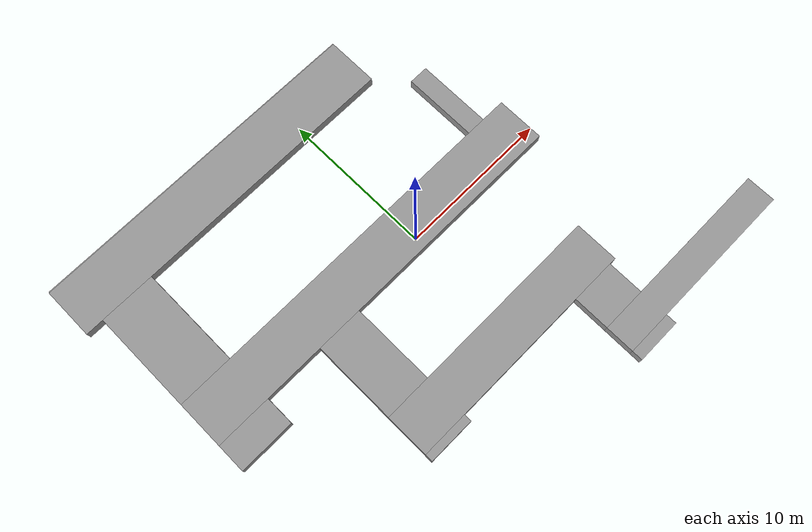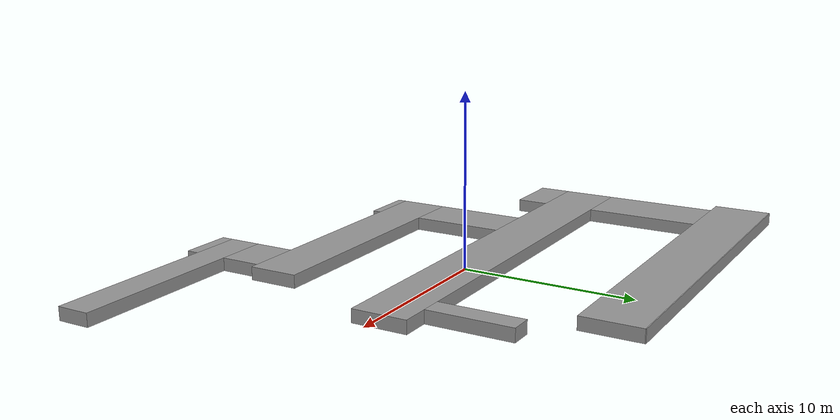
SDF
<sdf version="1.5">
 <world name="default">
  <include><uri>model://new_model</uri><pose>-20.000000 -15.000000 0 0 0 0</pose></include>
  <include><uri>model://sun</uri></include>
 </world>
</sdf>

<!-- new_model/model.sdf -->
<sdf version="1.6">
    <model name="new_model">
        <pose frame="">0 0 0 0 0 0</pose>
        <link name="wall1">
            <collision name="wall1_collision">
                <geometry>
                    <box>
                        <size>2.956250 0.706250 0.750000</size>
                    </box>
                </geometry>
                <pose frame="">25.200000 1.225000 0.375000 0 0 0</pose>
            </collision>
            <visual name="Wall_1_Visual">
                <pose frame="">25.200000 1.225000 0.375000 0 0 0</pose>
                <geometry>
                    <box>
                        <size>2.956250 0.706250 0.750000</size>
                    </box>
                </geometry>
                <material>
                    <script>
                        <uri>file://media/materials/scripts/gazebo.material</uri>
                        <name>Gazebo/Grey</name>
                    </script>
                    <ambient>1 1 1 1</ambient>
                </material>
                <meta>
                    <layer>0</layer>
                </meta>
            </visual>
            <pose frame="">0 0 0 0 0 0</pose>
        </link>
        <static>1</static>
        <link name="wall2">
            <collision name="wall2_collision">
                <geometry>
                    <box>
                        <size>12.706250 1.906250 0.750000</size>
                    </box>
                </geometry>
                <pose frame="">30.075000 2.525000 0.375000 0 0 0</pose>
            </collision>
            <visual name="Wall_2_Visual">
                <pose frame="">30.075000 2.525000 0.375000 0 0 0</pose>
                <geometry>
                    <box>
                        <size>12.706250 1.906250 0.750000</size>
                    </box>
                </geometry>
                <material>
                    <script>
                        <uri>file://media/materials/scripts/gazebo.material</uri>
                        <name>Gazebo/Grey</name>
                    </script>
                    <ambient>1 1 1 1</ambient>
                </material>
                <meta>
                    <layer>0</layer>
                </meta>
            </visual>
            <pose frame="">0 0 0 0 0 0</pose>
        </link>
        <static>1</static>
        <link name="wall3">
            <collision name="wall3_collision">
                <geometry>
                    <box>
                        <size>2.956250 2.356250 0.750000</size>
                    </box>
                </geometry>
                <pose frame="">25.200000 4.650000 0.375000 0 0 0</pose>
            </collision>
            <visual name="Wall_3_Visual">
                <pose frame="">25.200000 4.650000 0.375000 0 0 0</pose>
                <geometry>
                    <box>
                        <size>2.956250 2.356250 0.750000</size>
                    </box>
                </geometry>
                <material>
                    <script>
                        <uri>file://media/materials/scripts/gazebo.material</uri>
                        <name>Gazebo/Grey</name>
                    </script>
                    <ambient>1 1 1 1</ambient>
                </material>
                <meta>
                    <layer>0</layer>
                </meta>
            </visual>
            <pose frame="">0 0 0 0 0 0</pose>
        </link>
        <static>1</static>
        <link name="wall4">
            <collision name="wall4_collision">
                <geometry>
                    <box>
                        <size>3.056250 0.506250 0.750000</size>
                    </box>
                </geometry>
                <pose frame="">13.050000 5.575000 0.375000 0 0 0</pose>
            </collision>
            <visual name="Wall_4_Visual">
                <pose frame="">13.050000 5.575000 0.375000 0 0 0</pose>
                <geometry>
                    <box>
                        <size>3.056250 0.506250 0.750000</size>
                    </box>
                </geometry>
                <material>
                    <script>
                        <uri>file://media/materials/scripts/gazebo.material</uri>
                        <name>Gazebo/Grey</name>
                    </script>
                    <ambient>1 1 1 1</ambient>
                </material>
                <meta>
                    <layer>0</layer>
                </meta>
            </visual>
            <pose frame="">0 0 0 0 0 0</pose>
        </link>
        <static>1</static>
        <link name="wall5">
            <collision name="wall5_collision">
                <geometry>
                    <box>
                        <size>15.606250 2.856250 0.750000</size>
                    </box>
                </geometry>
                <pose frame="">19.325000 7.250000 0.375000 0 0 0</pose>
            </collision>
            <visual name="Wall_5_Visual">
                <pose frame="">19.325000 7.250000 0.375000 0 0 0</pose>
                <geometry>
                    <box>
                        <size>15.606250 2.856250 0.750000</size>
                    </box>
                </geometry>
                <material>
                    <script>
                        <uri>file://media/materials/scripts/gazebo.material</uri>
                        <name>Gazebo/Grey</name>
                    </script>
                    <ambient>1 1 1 1</ambient>
                </material>
                <meta>
                    <layer>0</layer>
                </meta>
            </visual>
            <pose frame="">0 0 0 0 0 0</pose>
        </link>
        <static>1</static>
        <link name="wall6">
            <collision name="wall6_collision">
                <geometry>
                    <box>
                        <size>3.056250 5.456250 0.750000</size>
                    </box>
                </geometry>
                <pose frame="">13.050000 11.400000 0.375000 0 0 0</pose>
            </collision>
            <visual name="Wall_6_Visual">
                <pose frame="">13.050000 11.400000 0.375000 0 0 0</pose>
                <geometry>
                    <box>
                        <size>3.056250 5.456250 0.750000</size>
                    </box>
                </geometry>
                <material>
                    <script>
                        <uri>file://media/materials/scripts/gazebo.material</uri>
                        <name>Gazebo/Grey</name>
                    </script>
                    <ambient>1 1 1 1</ambient>
                </material>
                <meta>
                    <layer>0</layer>
                </meta>
            </visual>
            <pose frame="">0 0 0 0 0 0</pose>
        </link>
        <static>1</static>
        <link name="wall7">
            <collision name="wall7_collision">
                <geometry>
                    <box>
                        <size>3.606250 1.906250 0.750000</size>
                    </box>
                </geometry>
                <pose frame="">5.775000 13.175000 0.375000 0 0 0</pose>
            </collision>
            <visual name="Wall_7_Visual">
                <pose frame="">5.775000 13.175000 0.375000 0 0 0</pose>
                <geometry>
                    <box>
                        <size>3.606250 1.906250 0.750000</size>
                    </box>
                </geometry>
                <material>
                    <script>
                        <uri>file://media/materials/scripts/gazebo.material</uri>
                        <name>Gazebo/Grey</name>
                    </script>
                    <ambient>1 1 1 1</ambient>
                </material>
                <meta>
                    <layer>0</layer>
                </meta>
            </visual>
            <pose frame="">0 0 0 0 0 0</pose>
        </link>
        <static>1</static>
        <link name="wall8">
            <collision name="wall8_collision">
                <geometry>
                    <box>
                        <size>25.756250 3.156250 0.750000</size>
                    </box>
                </geometry>
                <pose frame="">16.850000 15.700000 0.375000 0 0 0</pose>
            </collision>
            <visual name="Wall_8_Visual">
                <pose frame="">16.850000 15.700000 0.375000 0 0 0</pose>
                <geometry>
                    <box>
                        <size>25.756250 3.156250 0.750000</size>
                    </box>
                </geometry>
                <material>
                    <script>
                        <uri>file://media/materials/scripts/gazebo.material</uri>
                        <name>Gazebo/Grey</name>
                    </script>
                    <ambient>1 1 1 1</ambient>
                </material>
                <meta>
                    <layer>0</layer>
                </meta>
            </visual>
            <pose frame="">0 0 0 0 0 0</pose>
        </link>
        <static>1</static>
        <link name="wall9">
            <collision name="wall9_collision">
                <geometry>
                    <box>
                        <size>3.606250 6.756250 0.750000</size>
                    </box>
                </geometry>
                <pose frame="">5.775000 20.650000 0.375000 0 0 0</pose>
            </collision>
            <visual name="Wall_9_Visual">
                <pose frame="">5.775000 20.650000 0.375000 0 0 0</pose>
                <geometry>
                    <box>
                        <size>3.606250 6.756250 0.750000</size>
                    </box>
                </geometry>
                <material>
                    <script>
                        <uri>file://media/materials/scripts/gazebo.material</uri>
                        <name>Gazebo/Grey</name>
                    </script>
                    <ambient>1 1 1 1</ambient>
                </material>
                <meta>
                    <layer>0</layer>
                </meta>
            </visual>
            <pose frame="">0 0 0 0 0 0</pose>
        </link>
        <static>1</static>
        <link name="wall10">
            <collision name="wall10_collision">
                <geometry>
                    <box>
                        <size>1.256250 4.906250 0.750000</size>
                    </box>
                </geometry>
                <pose frame="">27.500000 19.725000 0.375000 0 0 0</pose>
            </collision>
            <visual name="Wall_10_Visual">
                <pose frame="">27.500000 19.725000 0.375000 0 0 0</pose>
                <geometry>
                    <box>
                        <size>1.256250 4.906250 0.750000</size>
                    </box>
                </geometry>
                <material>
                    <script>
                        <uri>file://media/materials/scripts/gazebo.material</uri>
                        <name>Gazebo/Grey</name>
                    </script>
                    <ambient>1 1 1 1</ambient>
                </material>
                <meta>
                    <layer>0</layer>
                </meta>
            </visual>
            <pose frame="">0 0 0 0 0 0</pose>
        </link>
        <static>1</static>
        <link name="wall11">
            <collision name="wall11_collision">
                <geometry>
                    <box>
                        <size>22.456250 3.406250 0.750000</size>
                    </box>
                </geometry>
                <pose frame="">14.050000 25.725000 0.375000 0 0 0</pose>
            </collision>
            <visual name="Wall_11_Visual">
                <pose frame="">14.050000 25.725000 0.375000 0 0 0</pose>
                <geometry>
                    <box>
                        <size>22.456250 3.406250 0.750000</size>
                    </box>
                </geometry>
                <material>
                    <script>
                        <uri>file://media/materials/scripts/gazebo.material</uri>
                        <name>Gazebo/Grey</name>
                    </script>
                    <ambient>1 1 1 1</ambient>
                </material>
                <meta>
                    <layer>0</layer>
                </meta>
            </visual>
            <pose frame="">0 0 0 0 0 0</pose>
        </link>
        <static>1</static>
        <link name="wall12">
            <collision name="wall12_collision">
                <geometry>
                    <box>
                        <size>22.406250 0.056250 0.750000</size>
                    </box>
                </geometry>
                <pose frame="">14.075000 27.450000 0.375000 0 0 0</pose>
            </collision>
            <visual name="Wall_12_Visual">
                <pose frame="">14.075000 27.450000 0.375000 0 0 0</pose>
                <geometry>
                    <box>
                        <size>22.406250 0.056250 0.750000</size>
                    </box>
                </geometry>
                <material>
                    <script>
                        <uri>file://media/materials/scripts/gazebo.material</uri>
                        <name>Gazebo/Grey</name>
                    </script>
                    <ambient>1 1 1 1</ambient>
                </material>
                <meta>
                    <layer>0</layer>
                </meta>
            </visual>
            <pose frame="">0 0 0 0 0 0</pose>
        </link>
        <static>1</static>
    </model>
</sdf>
